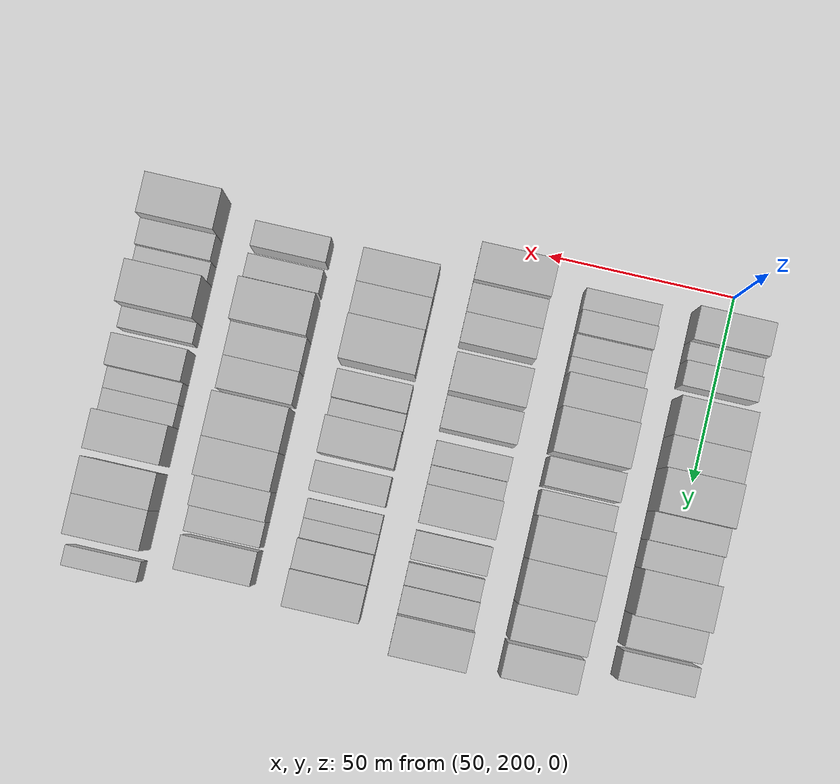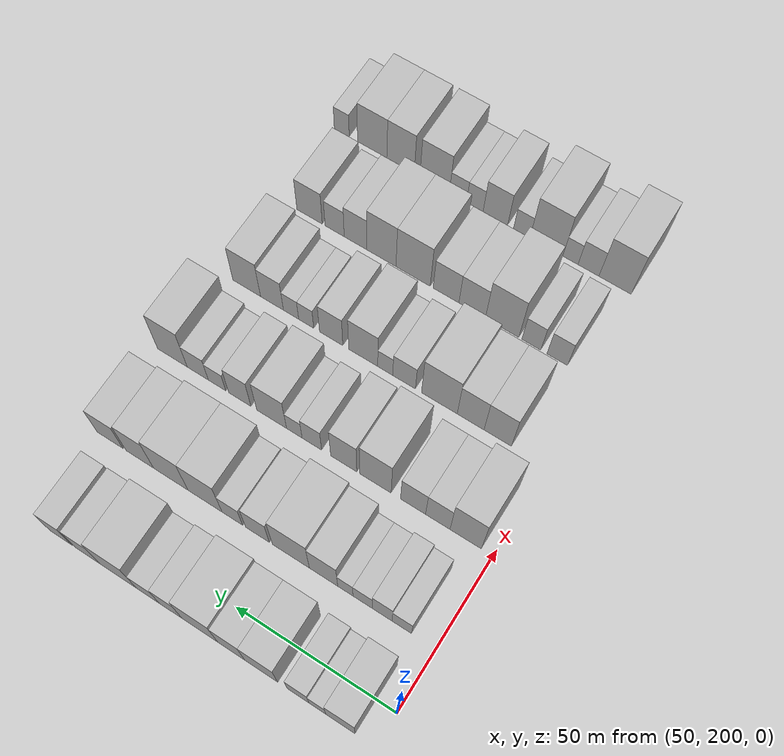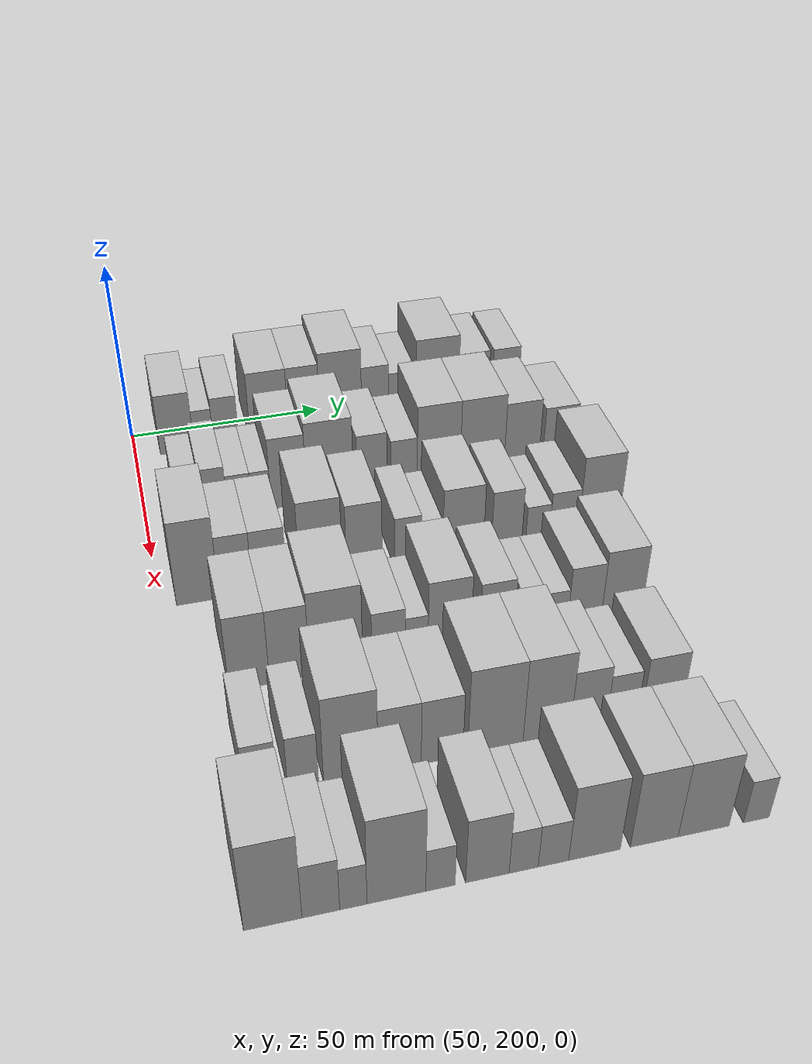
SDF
<sdf version="1.6">
 <world name="default">
  <model name="building_83">
   <static>1</static>
   <pose>50.0000 210.7663 0 0.000000 0.000000 0.000000</pose>
   <link name="link">
    <pose>0 0 9.00 0 0 0</pose>
    <collision name="collision"><geometry><box><size>20.0000 8.8241 18.0000</size></box></geometry></collision>
    <visual name="visual">
     <cast_shadows>0</cast_shadows>
     <geometry><box><size>20.0000 8.8241 18.0000</size></box></geometry>
     <material>
      <script>
       <uri>model://HANNAS_wall/materials/scripts</uri>
       <uri>model://HANNAS_wall/materials/textures</uri>
       <name>vrc/HANNAS_wall</name>
      </script>
     </material>
    </visual>
   </link>
  </model>
  <model name="building_84">
   <static>1</static>
   <pose>50.0000 217.7463 0 0.000000 0.000000 0.000000</pose>
   <link name="link">
    <pose>0 0 6.00 0 0 0</pose>
    <collision name="collision"><geometry><box><size>20.0000 5.1358 12.0000</size></box></geometry></collision>
    <visual name="visual">
     <cast_shadows>0</cast_shadows>
     <geometry><box><size>20.0000 5.1358 12.0000</size></box></geometry>
     <material>
      <script>
       <uri>model://HANNAS_wall/materials/scripts</uri>
       <uri>model://HANNAS_wall/materials/textures</uri>
       <name>vrc/HANNAS_wall</name>
      </script>
     </material>
    </visual>
   </link>
  </model>
  <model name="building_85">
   <static>1</static>
   <pose>50.0000 223.6400 0 0.000000 0.000000 0.000000</pose>
   <link name="link">
    <pose>0 0 7.50 0 0 0</pose>
    <collision name="collision"><geometry><box><size>20.0000 6.6517 15.0000</size></box></geometry></collision>
    <visual name="visual">
     <cast_shadows>0</cast_shadows>
     <geometry><box><size>20.0000 6.6517 15.0000</size></box></geometry>
     <material>
      <script>
       <uri>model://HANNAS_wall/materials/scripts</uri>
       <uri>model://HANNAS_wall/materials/textures</uri>
       <name>vrc/HANNAS_wall</name>
      </script>
     </material>
    </visual>
   </link>
  </model>
  <model name="building_86">
   <static>1</static>
   <pose>50.0000 235.0773 0 0.000000 0.000000 0.000000</pose>
   <link name="link">
    <pose>0 0 10.50 0 0 0</pose>
    <collision name="collision"><geometry><box><size>20.0000 10.2228 21.0000</size></box></geometry></collision>
    <visual name="visual">
     <cast_shadows>0</cast_shadows>
     <geometry><box><size>20.0000 10.2228 21.0000</size></box></geometry>
     <material>
      <script>
       <uri>model://HANNAS_wall/materials/scripts</uri>
       <uri>model://HANNAS_wall/materials/textures</uri>
       <name>vrc/HANNAS_wall</name>
      </script>
     </material>
    </visual>
   </link>
  </model>
  <model name="building_87">
   <static>1</static>
   <pose>50.0000 244.4352 0 0.000000 0.000000 0.000000</pose>
   <link name="link">
    <pose>0 0 10.50 0 0 0</pose>
    <collision name="collision"><geometry><box><size>20.0000 8.4931 21.0000</size></box></geometry></collision>
    <visual name="visual">
     <cast_shadows>0</cast_shadows>
     <geometry><box><size>20.0000 8.4931 21.0000</size></box></geometry>
     <material>
      <script>
       <uri>model://HANNAS_wall/materials/scripts</uri>
       <uri>model://HANNAS_wall/materials/textures</uri>
       <name>vrc/HANNAS_wall</name>
      </script>
     </material>
    </visual>
   </link>
  </model>
  <model name="building_88">
   <static>1</static>
   <pose>50.0000 254.3651 0 0.000000 0.000000 0.000000</pose>
   <link name="link">
    <pose>0 0 12.00 0 0 0</pose>
    <collision name="collision"><geometry><box><size>20.0000 11.3665 24.0000</size></box></geometry></collision>
    <visual name="visual">
     <cast_shadows>0</cast_shadows>
     <geometry><box><size>20.0000 11.3665 24.0000</size></box></geometry>
     <material>
      <script>
       <uri>model://HANNAS_wall/materials/scripts</uri>
       <uri>model://HANNAS_wall/materials/textures</uri>
       <name>vrc/HANNAS_wall</name>
      </script>
     </material>
    </visual>
   </link>
  </model>
  <model name="building_89">
   <static>1</static>
   <pose>50.0000 263.7651 0 0.000000 0.000000 0.000000</pose>
   <link name="link">
    <pose>0 0 9.00 0 0 0</pose>
    <collision name="collision"><geometry><box><size>20.0000 7.4335 18.0000</size></box></geometry></collision>
    <visual name="visual">
     <cast_shadows>0</cast_shadows>
     <geometry><box><size>20.0000 7.4335 18.0000</size></box></geometry>
     <material>
      <script>
       <uri>model://HANNAS_wall/materials/scripts</uri>
       <uri>model://HANNAS_wall/materials/textures</uri>
       <name>vrc/HANNAS_wall</name>
      </script>
     </material>
    </visual>
   </link>
  </model>
  <model name="building_90">
   <static>1</static>
   <pose>50.0000 271.1861 0 0.000000 0.000000 0.000000</pose>
   <link name="link">
    <pose>0 0 7.50 0 0 0</pose>
    <collision name="collision"><geometry><box><size>20.0000 7.4084 15.0000</size></box></geometry></collision>
    <visual name="visual">
     <cast_shadows>0</cast_shadows>
     <geometry><box><size>20.0000 7.4084 15.0000</size></box></geometry>
     <material>
      <script>
       <uri>model://HANNAS_wall/materials/scripts</uri>
       <uri>model://HANNAS_wall/materials/textures</uri>
       <name>vrc/HANNAS_wall</name>
      </script>
     </material>
    </visual>
   </link>
  </model>
  <model name="building_91">
   <static>1</static>
   <pose>50.0000 280.8134 0 0.000000 0.000000 0.000000</pose>
   <link name="link">
    <pose>0 0 12.00 0 0 0</pose>
    <collision name="collision"><geometry><box><size>20.0000 11.8461 24.0000</size></box></geometry></collision>
    <visual name="visual">
     <cast_shadows>0</cast_shadows>
     <geometry><box><size>20.0000 11.8461 24.0000</size></box></geometry>
     <material>
      <script>
       <uri>model://HANNAS_wall/materials/scripts</uri>
       <uri>model://HANNAS_wall/materials/textures</uri>
       <name>vrc/HANNAS_wall</name>
      </script>
     </material>
    </visual>
   </link>
  </model>
  <model name="building_92">
   <static>1</static>
   <pose>50.0000 290.9561 0 0.000000 0.000000 0.000000</pose>
   <link name="link">
    <pose>0 0 9.00 0 0 0</pose>
    <collision name="collision"><geometry><box><size>20.0000 8.4393 18.0000</size></box></geometry></collision>
    <visual name="visual">
     <cast_shadows>0</cast_shadows>
     <geometry><box><size>20.0000 8.4393 18.0000</size></box></geometry>
     <material>
      <script>
       <uri>model://HANNAS_wall/materials/scripts</uri>
       <uri>model://HANNAS_wall/materials/textures</uri>
       <name>vrc/HANNAS_wall</name>
      </script>
     </material>
    </visual>
   </link>
  </model>
  <model name="building_93">
   <static>1</static>
   <pose>50.0000 299.9388 0 0.000000 0.000000 0.000000</pose>
   <link name="link">
    <pose>0 0 9.00 0 0 0</pose>
    <collision name="collision"><geometry><box><size>20.0000 7.5260 18.0000</size></box></geometry></collision>
    <visual name="visual">
     <cast_shadows>0</cast_shadows>
     <geometry><box><size>20.0000 7.5260 18.0000</size></box></geometry>
     <material>
      <script>
       <uri>model://HANNAS_wall/materials/scripts</uri>
       <uri>model://HANNAS_wall/materials/textures</uri>
       <name>vrc/HANNAS_wall</name>
      </script>
     </material>
    </visual>
   </link>
  </model>
  <model name="building_189">
   <static>1</static>
   <pose>79.0000 210.5918 0 0.000000 0.000000 0.000000</pose>
   <link name="link">
    <pose>0 0 6.00 0 0 0</pose>
    <collision name="collision"><geometry><box><size>20.0000 5.9887 12.0000</size></box></geometry></collision>
    <visual name="visual">
     <cast_shadows>0</cast_shadows>
     <geometry><box><size>20.0000 5.9887 12.0000</size></box></geometry>
     <material>
      <script>
       <uri>model://HANNAS_wall/materials/scripts</uri>
       <uri>model://HANNAS_wall/materials/textures</uri>
       <name>vrc/HANNAS_wall</name>
      </script>
     </material>
    </visual>
   </link>
  </model>
  <model name="building_190">
   <static>1</static>
   <pose>79.0000 216.6692 0 0.000000 0.000000 0.000000</pose>
   <link name="link">
    <pose>0 0 7.50 0 0 0</pose>
    <collision name="collision"><geometry><box><size>20.0000 6.1660 15.0000</size></box></geometry></collision>
    <visual name="visual">
     <cast_shadows>0</cast_shadows>
     <geometry><box><size>20.0000 6.1660 15.0000</size></box></geometry>
     <material>
      <script>
       <uri>model://HANNAS_wall/materials/scripts</uri>
       <uri>model://HANNAS_wall/materials/textures</uri>
       <name>vrc/HANNAS_wall</name>
      </script>
     </material>
    </visual>
   </link>
  </model>
  <model name="building_191">
   <static>1</static>
   <pose>79.0000 222.7273 0 0.000000 0.000000 0.000000</pose>
   <link name="link">
    <pose>0 0 6.00 0 0 0</pose>
    <collision name="collision"><geometry><box><size>20.0000 5.9501 12.0000</size></box></geometry></collision>
    <visual name="visual">
     <cast_shadows>0</cast_shadows>
     <geometry><box><size>20.0000 5.9501 12.0000</size></box></geometry>
     <material>
      <script>
       <uri>model://HANNAS_wall/materials/scripts</uri>
       <uri>model://HANNAS_wall/materials/textures</uri>
       <name>vrc/HANNAS_wall</name>
      </script>
     </material>
    </visual>
   </link>
  </model>
  <model name="building_192">
   <static>1</static>
   <pose>79.0000 228.1070 0 0.000000 0.000000 0.000000</pose>
   <link name="link">
    <pose>0 0 6.00 0 0 0</pose>
    <collision name="collision"><geometry><box><size>20.0000 4.8092 12.0000</size></box></geometry></collision>
    <visual name="visual">
     <cast_shadows>0</cast_shadows>
     <geometry><box><size>20.0000 4.8092 12.0000</size></box></geometry>
     <material>
      <script>
       <uri>model://HANNAS_wall/materials/scripts</uri>
       <uri>model://HANNAS_wall/materials/textures</uri>
       <name>vrc/HANNAS_wall</name>
      </script>
     </material>
    </visual>
   </link>
  </model>
  <model name="building_193">
   <static>1</static>
   <pose>79.0000 234.9840 0 0.000000 0.000000 0.000000</pose>
   <link name="link">
    <pose>0 0 10.50 0 0 0</pose>
    <collision name="collision"><geometry><box><size>20.0000 8.9449 21.0000</size></box></geometry></collision>
    <visual name="visual">
     <cast_shadows>0</cast_shadows>
     <geometry><box><size>20.0000 8.9449 21.0000</size></box></geometry>
     <material>
      <script>
       <uri>model://HANNAS_wall/materials/scripts</uri>
       <uri>model://HANNAS_wall/materials/textures</uri>
       <name>vrc/HANNAS_wall</name>
      </script>
     </material>
    </visual>
   </link>
  </model>
  <model name="building_194">
   <static>1</static>
   <pose>79.0000 245.3715 0 0.000000 0.000000 0.000000</pose>
   <link name="link">
    <pose>0 0 12.00 0 0 0</pose>
    <collision name="collision"><geometry><box><size>20.0000 11.8299 24.0000</size></box></geometry></collision>
    <visual name="visual">
     <cast_shadows>0</cast_shadows>
     <geometry><box><size>20.0000 11.8299 24.0000</size></box></geometry>
     <material>
      <script>
       <uri>model://HANNAS_wall/materials/scripts</uri>
       <uri>model://HANNAS_wall/materials/textures</uri>
       <name>vrc/HANNAS_wall</name>
      </script>
     </material>
    </visual>
   </link>
  </model>
  <model name="building_195">
   <static>1</static>
   <pose>79.0000 256.1174 0 0.000000 0.000000 0.000000</pose>
   <link name="link">
    <pose>0 0 9.00 0 0 0</pose>
    <collision name="collision"><geometry><box><size>20.0000 7.6619 18.0000</size></box></geometry></collision>
    <visual name="visual">
     <cast_shadows>0</cast_shadows>
     <geometry><box><size>20.0000 7.6619 18.0000</size></box></geometry>
     <material>
      <script>
       <uri>model://HANNAS_wall/materials/scripts</uri>
       <uri>model://HANNAS_wall/materials/textures</uri>
       <name>vrc/HANNAS_wall</name>
      </script>
     </material>
    </visual>
   </link>
  </model>
  <model name="building_196">
   <static>1</static>
   <pose>79.0000 264.3113 0 0.000000 0.000000 0.000000</pose>
   <link name="link">
    <pose>0 0 7.50 0 0 0</pose>
    <collision name="collision"><geometry><box><size>20.0000 6.7260 15.0000</size></box></geometry></collision>
    <visual name="visual">
     <cast_shadows>0</cast_shadows>
     <geometry><box><size>20.0000 6.7260 15.0000</size></box></geometry>
     <material>
      <script>
       <uri>model://HANNAS_wall/materials/scripts</uri>
       <uri>model://HANNAS_wall/materials/textures</uri>
       <name>vrc/HANNAS_wall</name>
      </script>
     </material>
    </visual>
   </link>
  </model>
  <model name="building_197">
   <static>1</static>
   <pose>79.0000 273.2780 0 0.000000 0.000000 0.000000</pose>
   <link name="link">
    <pose>0 0 12.00 0 0 0</pose>
    <collision name="collision"><geometry><box><size>20.0000 11.2074 24.0000</size></box></geometry></collision>
    <visual name="visual">
     <cast_shadows>0</cast_shadows>
     <geometry><box><size>20.0000 11.2074 24.0000</size></box></geometry>
     <material>
      <script>
       <uri>model://HANNAS_wall/materials/scripts</uri>
       <uri>model://HANNAS_wall/materials/textures</uri>
       <name>vrc/HANNAS_wall</name>
      </script>
     </material>
    </visual>
   </link>
  </model>
  <model name="building_198">
   <static>1</static>
   <pose>79.0000 284.6827 0 0.000000 0.000000 0.000000</pose>
   <link name="link">
    <pose>0 0 12.00 0 0 0</pose>
    <collision name="collision"><geometry><box><size>20.0000 11.6021 24.0000</size></box></geometry></collision>
    <visual name="visual">
     <cast_shadows>0</cast_shadows>
     <geometry><box><size>20.0000 11.6021 24.0000</size></box></geometry>
     <material>
      <script>
       <uri>model://HANNAS_wall/materials/scripts</uri>
       <uri>model://HANNAS_wall/materials/textures</uri>
       <name>vrc/HANNAS_wall</name>
      </script>
     </material>
    </visual>
   </link>
  </model>
  <model name="building_199">
   <static>1</static>
   <pose>79.0000 295.1512 0 0.000000 0.000000 0.000000</pose>
   <link name="link">
    <pose>0 0 10.50 0 0 0</pose>
    <collision name="collision"><geometry><box><size>20.0000 9.3349 21.0000</size></box></geometry></collision>
    <visual name="visual">
     <cast_shadows>0</cast_shadows>
     <geometry><box><size>20.0000 9.3349 21.0000</size></box></geometry>
     <material>
      <script>
       <uri>model://HANNAS_wall/materials/scripts</uri>
       <uri>model://HANNAS_wall/materials/textures</uri>
       <name>vrc/HANNAS_wall</name>
      </script>
     </material>
    </visual>
   </link>
  </model>
  <model name="building_200">
   <static>1</static>
   <pose>79.0000 305.2721 0 0.000000 0.000000 0.000000</pose>
   <link name="link">
    <pose>0 0 9.00 0 0 0</pose>
    <collision name="collision"><geometry><box><size>20.0000 8.9069 18.0000</size></box></geometry></collision>
    <visual name="visual">
     <cast_shadows>0</cast_shadows>
     <geometry><box><size>20.0000 8.9069 18.0000</size></box></geometry>
     <material>
      <script>
       <uri>model://HANNAS_wall/materials/scripts</uri>
       <uri>model://HANNAS_wall/materials/textures</uri>
       <name>vrc/HANNAS_wall</name>
      </script>
     </material>
    </visual>
   </link>
  </model>
  <model name="building_307">
   <static>1</static>
   <pose>108.0000 208.5952 0 0.000000 0.000000 0.000000</pose>
   <link name="link">
    <pose>0 0 12.00 0 0 0</pose>
    <collision name="collision"><geometry><box><size>20.0000 9.7686 24.0000</size></box></geometry></collision>
    <visual name="visual">
     <cast_shadows>0</cast_shadows>
     <geometry><box><size>20.0000 9.7686 24.0000</size></box></geometry>
     <material>
      <script>
       <uri>model://HANNAS_wall/materials/scripts</uri>
       <uri>model://HANNAS_wall/materials/textures</uri>
       <name>vrc/HANNAS_wall</name>
      </script>
     </material>
    </visual>
   </link>
  </model>
  <model name="building_308">
   <static>1</static>
   <pose>108.0000 217.3296 0 0.000000 0.000000 0.000000</pose>
   <link name="link">
    <pose>0 0 9.00 0 0 0</pose>
    <collision name="collision"><geometry><box><size>20.0000 7.7001 18.0000</size></box></geometry></collision>
    <visual name="visual">
     <cast_shadows>0</cast_shadows>
     <geometry><box><size>20.0000 7.7001 18.0000</size></box></geometry>
     <material>
      <script>
       <uri>model://HANNAS_wall/materials/scripts</uri>
       <uri>model://HANNAS_wall/materials/textures</uri>
       <name>vrc/HANNAS_wall</name>
      </script>
     </material>
    </visual>
   </link>
  </model>
  <model name="building_309">
   <static>1</static>
   <pose>108.0000 225.1623 0 0.000000 0.000000 0.000000</pose>
   <link name="link">
    <pose>0 0 9.00 0 0 0</pose>
    <collision name="collision"><geometry><box><size>20.0000 7.9652 18.0000</size></box></geometry></collision>
    <visual name="visual">
     <cast_shadows>0</cast_shadows>
     <geometry><box><size>20.0000 7.9652 18.0000</size></box></geometry>
     <material>
      <script>
       <uri>model://HANNAS_wall/materials/scripts</uri>
       <uri>model://HANNAS_wall/materials/textures</uri>
       <name>vrc/HANNAS_wall</name>
      </script>
     </material>
    </visual>
   </link>
  </model>
  <model name="building_310">
   <static>1</static>
   <pose>108.0000 237.1747 0 0.000000 0.000000 0.000000</pose>
   <link name="link">
    <pose>0 0 12.00 0 0 0</pose>
    <collision name="collision"><geometry><box><size>20.0000 10.0598 24.0000</size></box></geometry></collision>
    <visual name="visual">
     <cast_shadows>0</cast_shadows>
     <geometry><box><size>20.0000 10.0598 24.0000</size></box></geometry>
     <material>
      <script>
       <uri>model://HANNAS_wall/materials/scripts</uri>
       <uri>model://HANNAS_wall/materials/textures</uri>
       <name>vrc/HANNAS_wall</name>
      </script>
     </material>
    </visual>
   </link>
  </model>
  <model name="building_311">
   <static>1</static>
   <pose>108.0000 247.4553 0 0.000000 0.000000 0.000000</pose>
   <link name="link">
    <pose>0 0 10.50 0 0 0</pose>
    <collision name="collision"><geometry><box><size>20.0000 8.5014 21.0000</size></box></geometry></collision>
    <visual name="visual">
     <cast_shadows>0</cast_shadows>
     <geometry><box><size>20.0000 8.5014 21.0000</size></box></geometry>
     <material>
      <script>
       <uri>model://HANNAS_wall/materials/scripts</uri>
       <uri>model://HANNAS_wall/materials/textures</uri>
       <name>vrc/HANNAS_wall</name>
      </script>
     </material>
    </visual>
   </link>
  </model>
  <model name="building_312">
   <static>1</static>
   <pose>108.0000 257.9052 0 0.000000 0.000000 0.000000</pose>
   <link name="link">
    <pose>0 0 7.50 0 0 0</pose>
    <collision name="collision"><geometry><box><size>20.0000 6.3983 15.0000</size></box></geometry></collision>
    <visual name="visual">
     <cast_shadows>0</cast_shadows>
     <geometry><box><size>20.0000 6.3983 15.0000</size></box></geometry>
     <material>
      <script>
       <uri>model://HANNAS_wall/materials/scripts</uri>
       <uri>model://HANNAS_wall/materials/textures</uri>
       <name>vrc/HANNAS_wall</name>
      </script>
     </material>
    </visual>
   </link>
  </model>
  <model name="building_313">
   <static>1</static>
   <pose>108.0000 263.6859 0 0.000000 0.000000 0.000000</pose>
   <link name="link">
    <pose>0 0 6.00 0 0 0</pose>
    <collision name="collision"><geometry><box><size>20.0000 5.1631 12.0000</size></box></geometry></collision>
    <visual name="visual">
     <cast_shadows>0</cast_shadows>
     <geometry><box><size>20.0000 5.1631 12.0000</size></box></geometry>
     <material>
      <script>
       <uri>model://HANNAS_wall/materials/scripts</uri>
       <uri>model://HANNAS_wall/materials/textures</uri>
       <name>vrc/HANNAS_wall</name>
      </script>
     </material>
    </visual>
   </link>
  </model>
  <model name="building_314">
   <static>1</static>
   <pose>108.0000 271.2433 0 0.000000 0.000000 0.000000</pose>
   <link name="link">
    <pose>0 0 10.50 0 0 0</pose>
    <collision name="collision"><geometry><box><size>20.0000 9.9518 21.0000</size></box></geometry></collision>
    <visual name="visual">
     <cast_shadows>0</cast_shadows>
     <geometry><box><size>20.0000 9.9518 21.0000</size></box></geometry>
     <material>
      <script>
       <uri>model://HANNAS_wall/materials/scripts</uri>
       <uri>model://HANNAS_wall/materials/textures</uri>
       <name>vrc/HANNAS_wall</name>
      </script>
     </material>
    </visual>
   </link>
  </model>
  <model name="building_315">
   <static>1</static>
   <pose>108.0000 281.9757 0 0.000000 0.000000 0.000000</pose>
   <link name="link">
    <pose>0 0 9.00 0 0 0</pose>
    <collision name="collision"><geometry><box><size>20.0000 7.5129 18.0000</size></box></geometry></collision>
    <visual name="visual">
     <cast_shadows>0</cast_shadows>
     <geometry><box><size>20.0000 7.5129 18.0000</size></box></geometry>
     <material>
      <script>
       <uri>model://HANNAS_wall/materials/scripts</uri>
       <uri>model://HANNAS_wall/materials/textures</uri>
       <name>vrc/HANNAS_wall</name>
      </script>
     </material>
    </visual>
   </link>
  </model>
  <model name="building_316">
   <static>1</static>
   <pose>108.0000 289.7001 0 0.000000 0.000000 0.000000</pose>
   <link name="link">
    <pose>0 0 6.00 0 0 0</pose>
    <collision name="collision"><geometry><box><size>20.0000 5.9358 12.0000</size></box></geometry></collision>
    <visual name="visual">
     <cast_shadows>0</cast_shadows>
     <geometry><box><size>20.0000 5.9358 12.0000</size></box></geometry>
     <material>
      <script>
       <uri>model://HANNAS_wall/materials/scripts</uri>
       <uri>model://HANNAS_wall/materials/textures</uri>
       <name>vrc/HANNAS_wall</name>
      </script>
     </material>
    </visual>
   </link>
  </model>
  <model name="building_317">
   <static>1</static>
   <pose>108.0000 296.3005 0 0.000000 0.000000 0.000000</pose>
   <link name="link">
    <pose>0 0 7.50 0 0 0</pose>
    <collision name="collision"><geometry><box><size>20.0000 7.2650 15.0000</size></box></geometry></collision>
    <visual name="visual">
     <cast_shadows>0</cast_shadows>
     <geometry><box><size>20.0000 7.2650 15.0000</size></box></geometry>
     <material>
      <script>
       <uri>model://HANNAS_wall/materials/scripts</uri>
       <uri>model://HANNAS_wall/materials/textures</uri>
       <name>vrc/HANNAS_wall</name>
      </script>
     </material>
    </visual>
   </link>
  </model>
  <model name="building_318">
   <static>1</static>
   <pose>108.0000 305.0696 0 0.000000 0.000000 0.000000</pose>
   <link name="link">
    <pose>0 0 12.00 0 0 0</pose>
    <collision name="collision"><geometry><box><size>20.0000 10.2733 24.0000</size></box></geometry></collision>
    <visual name="visual">
     <cast_shadows>0</cast_shadows>
     <geometry><box><size>20.0000 10.2733 24.0000</size></box></geometry>
     <material>
      <script>
       <uri>model://HANNAS_wall/materials/scripts</uri>
       <uri>model://HANNAS_wall/materials/textures</uri>
       <name>vrc/HANNAS_wall</name>
      </script>
     </material>
    </visual>
   </link>
  </model>
  <model name="building_417">
   <static>1</static>
   <pose>137.0000 215.7313 0 0.000000 0.000000 0.000000</pose>
   <link name="link">
    <pose>0 0 10.50 0 0 0</pose>
    <collision name="collision"><geometry><box><size>20.0000 8.7431 21.0000</size></box></geometry></collision>
    <visual name="visual">
     <cast_shadows>0</cast_shadows>
     <geometry><box><size>20.0000 8.7431 21.0000</size></box></geometry>
     <material>
      <script>
       <uri>model://HANNAS_wall/materials/scripts</uri>
       <uri>model://HANNAS_wall/materials/textures</uri>
       <name>vrc/HANNAS_wall</name>
      </script>
     </material>
    </visual>
   </link>
  </model>
  <model name="building_418">
   <static>1</static>
   <pose>137.0000 224.4358 0 0.000000 0.000000 0.000000</pose>
   <link name="link">
    <pose>0 0 10.50 0 0 0</pose>
    <collision name="collision"><geometry><box><size>20.0000 8.6660 21.0000</size></box></geometry></collision>
    <visual name="visual">
     <cast_shadows>0</cast_shadows>
     <geometry><box><size>20.0000 8.6660 21.0000</size></box></geometry>
     <material>
      <script>
       <uri>model://HANNAS_wall/materials/scripts</uri>
       <uri>model://HANNAS_wall/materials/textures</uri>
       <name>vrc/HANNAS_wall</name>
      </script>
     </material>
    </visual>
   </link>
  </model>
  <model name="building_419">
   <static>1</static>
   <pose>137.0000 234.5930 0 0.000000 0.000000 0.000000</pose>
   <link name="link">
    <pose>0 0 12.00 0 0 0</pose>
    <collision name="collision"><geometry><box><size>20.0000 11.6484 24.0000</size></box></geometry></collision>
    <visual name="visual">
     <cast_shadows>0</cast_shadows>
     <geometry><box><size>20.0000 11.6484 24.0000</size></box></geometry>
     <material>
      <script>
       <uri>model://HANNAS_wall/materials/scripts</uri>
       <uri>model://HANNAS_wall/materials/textures</uri>
       <name>vrc/HANNAS_wall</name>
      </script>
     </material>
    </visual>
   </link>
  </model>
  <model name="building_420">
   <static>1</static>
   <pose>137.0000 246.1646 0 0.000000 0.000000 0.000000</pose>
   <link name="link">
    <pose>0 0 7.50 0 0 0</pose>
    <collision name="collision"><geometry><box><size>20.0000 7.4948 15.0000</size></box></geometry></collision>
    <visual name="visual">
     <cast_shadows>0</cast_shadows>
     <geometry><box><size>20.0000 7.4948 15.0000</size></box></geometry>
     <material>
      <script>
       <uri>model://HANNAS_wall/materials/scripts</uri>
       <uri>model://HANNAS_wall/materials/textures</uri>
       <name>vrc/HANNAS_wall</name>
      </script>
     </material>
    </visual>
   </link>
  </model>
  <model name="building_421">
   <static>1</static>
   <pose>137.0000 252.4036 0 0.000000 0.000000 0.000000</pose>
   <link name="link">
    <pose>0 0 6.00 0 0 0</pose>
    <collision name="collision"><geometry><box><size>20.0000 4.9832 12.0000</size></box></geometry></collision>
    <visual name="visual">
     <cast_shadows>0</cast_shadows>
     <geometry><box><size>20.0000 4.9832 12.0000</size></box></geometry>
     <material>
      <script>
       <uri>model://HANNAS_wall/materials/scripts</uri>
       <uri>model://HANNAS_wall/materials/textures</uri>
       <name>vrc/HANNAS_wall</name>
      </script>
     </material>
    </visual>
   </link>
  </model>
  <model name="building_422">
   <static>1</static>
   <pose>137.0000 259.7455 0 0.000000 0.000000 0.000000</pose>
   <link name="link">
    <pose>0 0 10.50 0 0 0</pose>
    <collision name="collision"><geometry><box><size>20.0000 9.7008 21.0000</size></box></geometry></collision>
    <visual name="visual">
     <cast_shadows>0</cast_shadows>
     <geometry><box><size>20.0000 9.7008 21.0000</size></box></geometry>
     <material>
      <script>
       <uri>model://HANNAS_wall/materials/scripts</uri>
       <uri>model://HANNAS_wall/materials/textures</uri>
       <name>vrc/HANNAS_wall</name>
      </script>
     </material>
    </visual>
   </link>
  </model>
  <model name="building_423">
   <static>1</static>
   <pose>137.0000 270.5312 0 0.000000 0.000000 0.000000</pose>
   <link name="link">
    <pose>0 0 9.00 0 0 0</pose>
    <collision name="collision"><geometry><box><size>20.0000 7.8705 18.0000</size></box></geometry></collision>
    <visual name="visual">
     <cast_shadows>0</cast_shadows>
     <geometry><box><size>20.0000 7.8705 18.0000</size></box></geometry>
     <material>
      <script>
       <uri>model://HANNAS_wall/materials/scripts</uri>
       <uri>model://HANNAS_wall/materials/textures</uri>
       <name>vrc/HANNAS_wall</name>
      </script>
     </material>
    </visual>
   </link>
  </model>
  <model name="building_424">
   <static>1</static>
   <pose>137.0000 279.0450 0 0.000000 0.000000 0.000000</pose>
   <link name="link">
    <pose>0 0 6.00 0 0 0</pose>
    <collision name="collision"><geometry><box><size>20.0000 5.1572 12.0000</size></box></geometry></collision>
    <visual name="visual">
     <cast_shadows>0</cast_shadows>
     <geometry><box><size>20.0000 5.1572 12.0000</size></box></geometry>
     <material>
      <script>
       <uri>model://HANNAS_wall/materials/scripts</uri>
       <uri>model://HANNAS_wall/materials/textures</uri>
       <name>vrc/HANNAS_wall</name>
      </script>
     </material>
    </visual>
   </link>
  </model>
  <model name="building_425">
   <static>1</static>
   <pose>137.0000 284.2472 0 0.000000 0.000000 0.000000</pose>
   <link name="link">
    <pose>0 0 6.00 0 0 0</pose>
    <collision name="collision"><geometry><box><size>20.0000 5.2471 12.0000</size></box></geometry></collision>
    <visual name="visual">
     <cast_shadows>0</cast_shadows>
     <geometry><box><size>20.0000 5.2471 12.0000</size></box></geometry>
     <material>
      <script>
       <uri>model://HANNAS_wall/materials/scripts</uri>
       <uri>model://HANNAS_wall/materials/textures</uri>
       <name>vrc/HANNAS_wall</name>
      </script>
     </material>
    </visual>
   </link>
  </model>
  <model name="building_426">
   <static>1</static>
   <pose>137.0000 290.8343 0 0.000000 0.000000 0.000000</pose>
   <link name="link">
    <pose>0 0 9.00 0 0 0</pose>
    <collision name="collision"><geometry><box><size>20.0000 7.9273 18.0000</size></box></geometry></collision>
    <visual name="visual">
     <cast_shadows>0</cast_shadows>
     <geometry><box><size>20.0000 7.9273 18.0000</size></box></geometry>
     <material>
      <script>
       <uri>model://HANNAS_wall/materials/scripts</uri>
       <uri>model://HANNAS_wall/materials/textures</uri>
       <name>vrc/HANNAS_wall</name>
      </script>
     </material>
    </visual>
   </link>
  </model>
  <model name="building_427">
   <static>1</static>
   <pose>137.0000 299.6214 0 0.000000 0.000000 0.000000</pose>
   <link name="link">
    <pose>0 0 10.50 0 0 0</pose>
    <collision name="collision"><geometry><box><size>20.0000 9.6469 21.0000</size></box></geometry></collision>
    <visual name="visual">
     <cast_shadows>0</cast_shadows>
     <geometry><box><size>20.0000 9.6469 21.0000</size></box></geometry>
     <material>
      <script>
       <uri>model://HANNAS_wall/materials/scripts</uri>
       <uri>model://HANNAS_wall/materials/textures</uri>
       <name>vrc/HANNAS_wall</name>
      </script>
     </material>
    </visual>
   </link>
  </model>
  <model name="building_535">
   <static>1</static>
   <pose>166.0000 213.3591 0 0.000000 0.000000 0.000000</pose>
   <link name="link">
    <pose>0 0 7.50 0 0 0</pose>
    <collision name="collision"><geometry><box><size>20.0000 6.6493 15.0000</size></box></geometry></collision>
    <visual name="visual">
     <cast_shadows>0</cast_shadows>
     <geometry><box><size>20.0000 6.6493 15.0000</size></box></geometry>
     <material>
      <script>
       <uri>model://HANNAS_wall/materials/scripts</uri>
       <uri>model://HANNAS_wall/materials/textures</uri>
       <name>vrc/HANNAS_wall</name>
      </script>
     </material>
    </visual>
   </link>
  </model>
  <model name="building_536">
   <static>1</static>
   <pose>166.0000 221.7760 0 0.000000 0.000000 0.000000</pose>
   <link name="link">
    <pose>0 0 7.50 0 0 0</pose>
    <collision name="collision"><geometry><box><size>20.0000 6.1847 15.0000</size></box></geometry></collision>
    <visual name="visual">
     <cast_shadows>0</cast_shadows>
     <geometry><box><size>20.0000 6.1847 15.0000</size></box></geometry>
     <material>
      <script>
       <uri>model://HANNAS_wall/materials/scripts</uri>
       <uri>model://HANNAS_wall/materials/textures</uri>
       <name>vrc/HANNAS_wall</name>
      </script>
     </material>
    </visual>
   </link>
  </model>
  <model name="building_537">
   <static>1</static>
   <pose>166.0000 231.3819 0 0.000000 0.000000 0.000000</pose>
   <link name="link">
    <pose>0 0 12.00 0 0 0</pose>
    <collision name="collision"><geometry><box><size>20.0000 11.0270 24.0000</size></box></geometry></collision>
    <visual name="visual">
     <cast_shadows>0</cast_shadows>
     <geometry><box><size>20.0000 11.0270 24.0000</size></box></geometry>
     <material>
      <script>
       <uri>model://HANNAS_wall/materials/scripts</uri>
       <uri>model://HANNAS_wall/materials/textures</uri>
       <name>vrc/HANNAS_wall</name>
      </script>
     </material>
    </visual>
   </link>
  </model>
  <model name="building_538">
   <static>1</static>
   <pose>166.0000 241.3158 0 0.000000 0.000000 0.000000</pose>
   <link name="link">
    <pose>0 0 9.00 0 0 0</pose>
    <collision name="collision"><geometry><box><size>20.0000 8.8408 18.0000</size></box></geometry></collision>
    <visual name="visual">
     <cast_shadows>0</cast_shadows>
     <geometry><box><size>20.0000 8.8408 18.0000</size></box></geometry>
     <material>
      <script>
       <uri>model://HANNAS_wall/materials/scripts</uri>
       <uri>model://HANNAS_wall/materials/textures</uri>
       <name>vrc/HANNAS_wall</name>
      </script>
     </material>
    </visual>
   </link>
  </model>
  <model name="building_539">
   <static>1</static>
   <pose>166.0000 250.0735 0 0.000000 0.000000 0.000000</pose>
   <link name="link">
    <pose>0 0 9.00 0 0 0</pose>
    <collision name="collision"><geometry><box><size>20.0000 8.6747 18.0000</size></box></geometry></collision>
    <visual name="visual">
     <cast_shadows>0</cast_shadows>
     <geometry><box><size>20.0000 8.6747 18.0000</size></box></geometry>
     <material>
      <script>
       <uri>model://HANNAS_wall/materials/scripts</uri>
       <uri>model://HANNAS_wall/materials/textures</uri>
       <name>vrc/HANNAS_wall</name>
      </script>
     </material>
    </visual>
   </link>
  </model>
  <model name="building_540">
   <static>1</static>
   <pose>166.0000 261.2469 0 0.000000 0.000000 0.000000</pose>
   <link name="link">
    <pose>0 0 12.00 0 0 0</pose>
    <collision name="collision"><geometry><box><size>20.0000 11.6720 24.0000</size></box></geometry></collision>
    <visual name="visual">
     <cast_shadows>0</cast_shadows>
     <geometry><box><size>20.0000 11.6720 24.0000</size></box></geometry>
     <material>
      <script>
       <uri>model://HANNAS_wall/materials/scripts</uri>
       <uri>model://HANNAS_wall/materials/textures</uri>
       <name>vrc/HANNAS_wall</name>
      </script>
     </material>
    </visual>
   </link>
  </model>
  <model name="building_541">
   <static>1</static>
   <pose>166.0000 272.1221 0 0.000000 0.000000 0.000000</pose>
   <link name="link">
    <pose>0 0 12.00 0 0 0</pose>
    <collision name="collision"><geometry><box><size>20.0000 10.0785 24.0000</size></box></geometry></collision>
    <visual name="visual">
     <cast_shadows>0</cast_shadows>
     <geometry><box><size>20.0000 10.0785 24.0000</size></box></geometry>
     <material>
      <script>
       <uri>model://HANNAS_wall/materials/scripts</uri>
       <uri>model://HANNAS_wall/materials/textures</uri>
       <name>vrc/HANNAS_wall</name>
      </script>
     </material>
    </visual>
   </link>
  </model>
  <model name="building_542">
   <static>1</static>
   <pose>166.0000 281.0706 0 0.000000 0.000000 0.000000</pose>
   <link name="link">
    <pose>0 0 9.00 0 0 0</pose>
    <collision name="collision"><geometry><box><size>20.0000 7.8185 18.0000</size></box></geometry></collision>
    <visual name="visual">
     <cast_shadows>0</cast_shadows>
     <geometry><box><size>20.0000 7.8185 18.0000</size></box></geometry>
     <material>
      <script>
       <uri>model://HANNAS_wall/materials/scripts</uri>
       <uri>model://HANNAS_wall/materials/textures</uri>
       <name>vrc/HANNAS_wall</name>
      </script>
     </material>
    </visual>
   </link>
  </model>
  <model name="building_543">
   <static>1</static>
   <pose>166.0000 288.3231 0 0.000000 0.000000 0.000000</pose>
   <link name="link">
    <pose>0 0 7.50 0 0 0</pose>
    <collision name="collision"><geometry><box><size>20.0000 6.6865 15.0000</size></box></geometry></collision>
    <visual name="visual">
     <cast_shadows>0</cast_shadows>
     <geometry><box><size>20.0000 6.6865 15.0000</size></box></geometry>
     <material>
      <script>
       <uri>model://HANNAS_wall/materials/scripts</uri>
       <uri>model://HANNAS_wall/materials/textures</uri>
       <name>vrc/HANNAS_wall</name>
      </script>
     </material>
    </visual>
   </link>
  </model>
  <model name="building_544">
   <static>1</static>
   <pose>166.0000 297.1411 0 0.000000 0.000000 0.000000</pose>
   <link name="link">
    <pose>0 0 9.00 0 0 0</pose>
    <collision name="collision"><geometry><box><size>20.0000 8.9496 18.0000</size></box></geometry></collision>
    <visual name="visual">
     <cast_shadows>0</cast_shadows>
     <geometry><box><size>20.0000 8.9496 18.0000</size></box></geometry>
     <material>
      <script>
       <uri>model://HANNAS_wall/materials/scripts</uri>
       <uri>model://HANNAS_wall/materials/textures</uri>
       <name>vrc/HANNAS_wall</name>
      </script>
     </material>
    </visual>
   </link>
  </model>
  <model name="building_647">
   <static>1</static>
   <pose>195.0000 210.6506 0 0.000000 0.000000 0.000000</pose>
   <link name="link">
    <pose>0 0 12.00 0 0 0</pose>
    <collision name="collision"><geometry><box><size>20.0000 10.5894 24.0000</size></box></geometry></collision>
    <visual name="visual">
     <cast_shadows>0</cast_shadows>
     <geometry><box><size>20.0000 10.5894 24.0000</size></box></geometry>
     <material>
      <script>
       <uri>model://HANNAS_wall/materials/scripts</uri>
       <uri>model://HANNAS_wall/materials/textures</uri>
       <name>vrc/HANNAS_wall</name>
      </script>
     </material>
    </visual>
   </link>
  </model>
  <model name="building_648">
   <static>1</static>
   <pose>195.0000 219.4066 0 0.000000 0.000000 0.000000</pose>
   <link name="link">
    <pose>0 0 7.50 0 0 0</pose>
    <collision name="collision"><geometry><box><size>20.0000 6.9227 15.0000</size></box></geometry></collision>
    <visual name="visual">
     <cast_shadows>0</cast_shadows>
     <geometry><box><size>20.0000 6.9227 15.0000</size></box></geometry>
     <material>
      <script>
       <uri>model://HANNAS_wall/materials/scripts</uri>
       <uri>model://HANNAS_wall/materials/textures</uri>
       <name>vrc/HANNAS_wall</name>
      </script>
     </material>
    </visual>
   </link>
  </model>
  <model name="building_649">
   <static>1</static>
   <pose>195.0000 225.4080 0 0.000000 0.000000 0.000000</pose>
   <link name="link">
    <pose>0 0 6.00 0 0 0</pose>
    <collision name="collision"><geometry><box><size>20.0000 5.0802 12.0000</size></box></geometry></collision>
    <visual name="visual">
     <cast_shadows>0</cast_shadows>
     <geometry><box><size>20.0000 5.0802 12.0000</size></box></geometry>
     <material>
      <script>
       <uri>model://HANNAS_wall/materials/scripts</uri>
       <uri>model://HANNAS_wall/materials/textures</uri>
       <name>vrc/HANNAS_wall</name>
      </script>
     </material>
    </visual>
   </link>
  </model>
  <model name="building_650">
   <static>1</static>
   <pose>195.0000 233.4471 0 0.000000 0.000000 0.000000</pose>
   <link name="link">
    <pose>0 0 12.00 0 0 0</pose>
    <collision name="collision"><geometry><box><size>20.0000 10.9981 24.0000</size></box></geometry></collision>
    <visual name="visual">
     <cast_shadows>0</cast_shadows>
     <geometry><box><size>20.0000 10.9981 24.0000</size></box></geometry>
     <material>
      <script>
       <uri>model://HANNAS_wall/materials/scripts</uri>
       <uri>model://HANNAS_wall/materials/textures</uri>
       <name>vrc/HANNAS_wall</name>
      </script>
     </material>
    </visual>
   </link>
  </model>
  <model name="building_651">
   <static>1</static>
   <pose>195.0000 241.7356 0 0.000000 0.000000 0.000000</pose>
   <link name="link">
    <pose>0 0 6.00 0 0 0</pose>
    <collision name="collision"><geometry><box><size>20.0000 5.5788 12.0000</size></box></geometry></collision>
    <visual name="visual">
     <cast_shadows>0</cast_shadows>
     <geometry><box><size>20.0000 5.5788 12.0000</size></box></geometry>
     <material>
      <script>
       <uri>model://HANNAS_wall/materials/scripts</uri>
       <uri>model://HANNAS_wall/materials/textures</uri>
       <name>vrc/HANNAS_wall</name>
      </script>
     </material>
    </visual>
   </link>
  </model>
  <model name="building_652">
   <static>1</static>
   <pose>195.0000 250.7128 0 0.000000 0.000000 0.000000</pose>
   <link name="link">
    <pose>0 0 9.00 0 0 0</pose>
    <collision name="collision"><geometry><box><size>20.0000 8.3757 18.0000</size></box></geometry></collision>
    <visual name="visual">
     <cast_shadows>0</cast_shadows>
     <geometry><box><size>20.0000 8.3757 18.0000</size></box></geometry>
     <material>
      <script>
       <uri>model://HANNAS_wall/materials/scripts</uri>
       <uri>model://HANNAS_wall/materials/textures</uri>
       <name>vrc/HANNAS_wall</name>
      </script>
     </material>
    </visual>
   </link>
  </model>
  <model name="building_653">
   <static>1</static>
   <pose>195.0000 257.7356 0 0.000000 0.000000 0.000000</pose>
   <link name="link">
    <pose>0 0 6.00 0 0 0</pose>
    <collision name="collision"><geometry><box><size>20.0000 5.6697 12.0000</size></box></geometry></collision>
    <visual name="visual">
     <cast_shadows>0</cast_shadows>
     <geometry><box><size>20.0000 5.6697 12.0000</size></box></geometry>
     <material>
      <script>
       <uri>model://HANNAS_wall/materials/scripts</uri>
       <uri>model://HANNAS_wall/materials/textures</uri>
       <name>vrc/HANNAS_wall</name>
      </script>
     </material>
    </visual>
   </link>
  </model>
  <model name="building_654">
   <static>1</static>
   <pose>195.0000 263.5497 0 0.000000 0.000000 0.000000</pose>
   <link name="link">
    <pose>0 0 6.00 0 0 0</pose>
    <collision name="collision"><geometry><box><size>20.0000 5.9585 12.0000</size></box></geometry></collision>
    <visual name="visual">
     <cast_shadows>0</cast_shadows>
     <geometry><box><size>20.0000 5.9585 12.0000</size></box></geometry>
     <material>
      <script>
       <uri>model://HANNAS_wall/materials/scripts</uri>
       <uri>model://HANNAS_wall/materials/textures</uri>
       <name>vrc/HANNAS_wall</name>
      </script>
     </material>
    </visual>
   </link>
  </model>
  <model name="building_655">
   <static>1</static>
   <pose>195.0000 271.6869 0 0.000000 0.000000 0.000000</pose>
   <link name="link">
    <pose>0 0 10.50 0 0 0</pose>
    <collision name="collision"><geometry><box><size>20.0000 10.3160 21.0000</size></box></geometry></collision>
    <visual name="visual">
     <cast_shadows>0</cast_shadows>
     <geometry><box><size>20.0000 10.3160 21.0000</size></box></geometry>
     <material>
      <script>
       <uri>model://HANNAS_wall/materials/scripts</uri>
       <uri>model://HANNAS_wall/materials/textures</uri>
       <name>vrc/HANNAS_wall</name>
      </script>
     </material>
    </visual>
   </link>
  </model>
  <model name="building_656">
   <static>1</static>
   <pose>195.0000 283.6935 0 0.000000 0.000000 0.000000</pose>
   <link name="link">
    <pose>0 0 10.50 0 0 0</pose>
    <collision name="collision"><geometry><box><size>20.0000 9.6971 21.0000</size></box></geometry></collision>
    <visual name="visual">
     <cast_shadows>0</cast_shadows>
     <geometry><box><size>20.0000 9.6971 21.0000</size></box></geometry>
     <material>
      <script>
       <uri>model://HANNAS_wall/materials/scripts</uri>
       <uri>model://HANNAS_wall/materials/textures</uri>
       <name>vrc/HANNAS_wall</name>
      </script>
     </material>
    </visual>
   </link>
  </model>
  <model name="building_657">
   <static>1</static>
   <pose>195.0000 293.7746 0 0.000000 0.000000 0.000000</pose>
   <link name="link">
    <pose>0 0 10.50 0 0 0</pose>
    <collision name="collision"><geometry><box><size>20.0000 10.4651 21.0000</size></box></geometry></collision>
    <visual name="visual">
     <cast_shadows>0</cast_shadows>
     <geometry><box><size>20.0000 10.4651 21.0000</size></box></geometry>
     <material>
      <script>
       <uri>model://HANNAS_wall/materials/scripts</uri>
       <uri>model://HANNAS_wall/materials/textures</uri>
       <name>vrc/HANNAS_wall</name>
      </script>
     </material>
    </visual>
   </link>
  </model>
  <model name="building_658">
   <static>1</static>
   <pose>195.0000 304.6899 0 0.000000 0.000000 0.000000</pose>
   <link name="link">
    <pose>0 0 6.00 0 0 0</pose>
    <collision name="collision"><geometry><box><size>20.0000 5.3655 12.0000</size></box></geometry></collision>
    <visual name="visual">
     <cast_shadows>0</cast_shadows>
     <geometry><box><size>20.0000 5.3655 12.0000</size></box></geometry>
     <material>
      <script>
       <uri>model://HANNAS_wall/materials/scripts</uri>
       <uri>model://HANNAS_wall/materials/textures</uri>
       <name>vrc/HANNAS_wall</name>
      </script>
     </material>
    </visual>
   </link>
  </model>
 </world>
</sdf>
